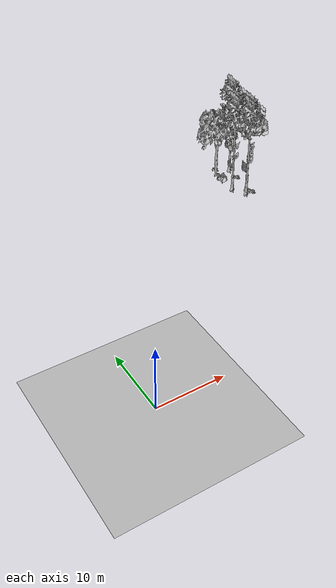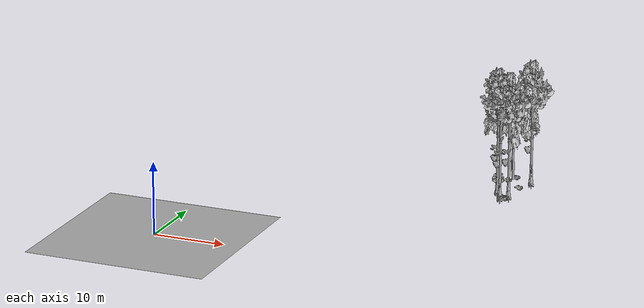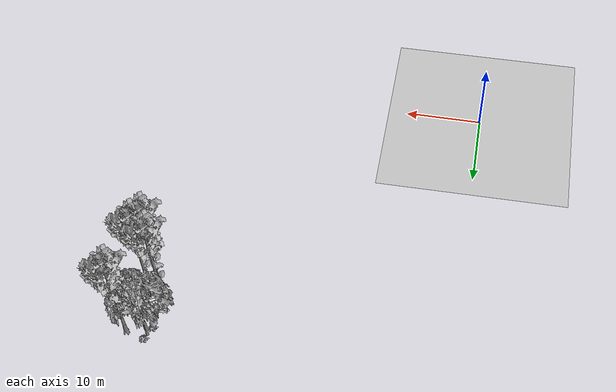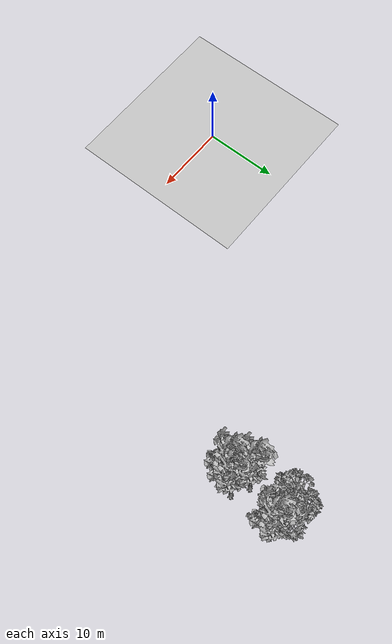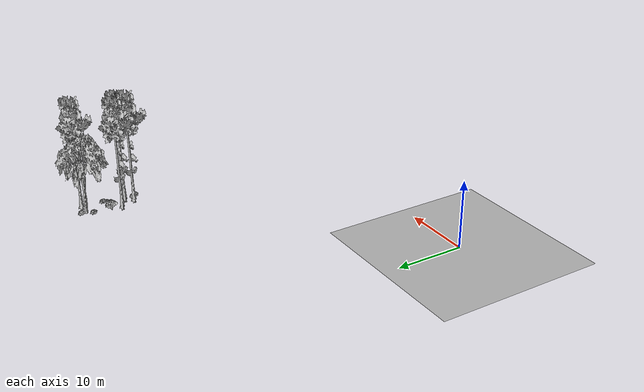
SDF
<sdf version="1.7">
 <world name="default">
  <model name="ground_plane">
   <static>1</static>
   <link name="link">
    <collision name="collision">
     <pose>-50 0 0 0 -0 0</pose>
     <geometry><plane><normal>0 0 1</normal><size>80 80</size></plane></geometry>
     <surface><contact><ode><min_depth>0.01</min_depth><max_vel>0</max_vel></ode></contact></surface>
    </collision>
    <visual name="grass">
     <cast_shadows>0</cast_shadows>
     <geometry>
      <mesh>
       <scale>0.46714285714285714 0.46714285714285714 0.1</scale>
       <uri>file://grass_plane/meshes/grass_plane.dae</uri>
      </mesh>
     </geometry>
    </visual>
   </link>
  </model>
  <model name="Tree 122">
   <static>1</static>
   <pose>38.541167763056265 39.123364891132084 0 1.57079 -0 0</pose>
   <link name="link">
    <collision name="collision">
     <geometry><mesh><scale>3.5 5 3.5</scale><uri>model://tree_9/meshes/tree_9.obj</uri></mesh></geometry>
    </collision>
    <visual name="visual">
     <geometry><mesh><scale>3.5 5 3.5</scale><uri>model://tree_9/meshes/tree_9.obj</uri></mesh></geometry>
    </visual>
   </link>
  </model>
  <model name="Tree 229">
   <static>1</static>
   <pose>35.48953371965894 34.01088379897912 0 1.57079 -0 0</pose>
   <link name="link">
    <collision name="collision">
     <geometry><mesh><scale>3.5 5 3.5</scale><uri>model://tree_9/meshes/tree_9.obj</uri></mesh></geometry>
    </collision>
    <visual name="visual">
     <geometry><mesh><scale>3.5 5 3.5</scale><uri>model://tree_9/meshes/tree_9.obj</uri></mesh></geometry>
    </visual>
   </link>
  </model>
  <model name="Tree 387">
   <static>1</static>
   <pose>36.674760177473686 31.706012299433397 0 1.57079 -0 0</pose>
   <link name="link">
    <collision name="collision">
     <geometry><mesh><scale>3.5 5 3.5</scale><uri>model://tree_9/meshes/tree_9.obj</uri></mesh></geometry>
    </collision>
    <visual name="visual">
     <geometry><mesh><scale>3.5 5 3.5</scale><uri>model://tree_9/meshes/tree_9.obj</uri></mesh></geometry>
    </visual>
   </link>
  </model>
  <model name="Tree 468">
   <static>1</static>
   <pose>35.74546307909968 39.30894549496571 0 1.57079 -0 0</pose>
   <link name="link">
    <collision name="collision">
     <geometry><mesh><scale>3.5 5 3.5</scale><uri>model://tree_2/meshes/tree_2.obj</uri></mesh></geometry>
    </collision>
    <visual name="visual">
     <geometry><mesh><scale>3.5 5 3.5</scale><uri>model://tree_2/meshes/tree_2.obj</uri></mesh></geometry>
    </visual>
   </link>
  </model>
  <model name="Tree 629">
   <static>1</static>
   <pose>37.543495155646156 32.80340105167946 0 1.57079 -0 0</pose>
   <link name="link">
    <collision name="collision">
     <geometry><mesh><scale>3.5 5 3.5</scale><uri>model://tree_9/meshes/tree_9.obj</uri></mesh></geometry>
    </collision>
    <visual name="visual">
     <geometry><mesh><scale>3.5 5 3.5</scale><uri>model://tree_9/meshes/tree_9.obj</uri></mesh></geometry>
    </visual>
   </link>
  </model>
  <model name="Bush 112">
   <static>1</static>
   <pose>35.43891186207571 38.33185056647872 0 1.57079 -0 0</pose>
   <link name="link">
    <collision name="collision">
     <geometry><mesh><scale>2 2 2</scale><uri>model://bush_2/meshes/bush_2.obj</uri></mesh></geometry>
     <surface><contact><collide_without_contact>false</collide_without_contact></contact></surface>
    </collision>
    <visual name="visual">
     <geometry><mesh><scale>2 2 2</scale><uri>model://bush_2/meshes/bush_2.obj</uri></mesh></geometry>
    </visual>
   </link>
  </model>
  <model name="Bush 314">
   <static>1</static>
   <pose>37.121661655096105 31.628814139819383 0 1.57079 -0 0</pose>
   <link name="link">
    <collision name="collision">
     <geometry><mesh><scale>2 2 2</scale><uri>model://bush_2/meshes/bush_2.obj</uri></mesh></geometry>
     <surface><contact><collide_without_contact>false</collide_without_contact></contact></surface>
    </collision>
    <visual name="visual">
     <geometry><mesh><scale>2 2 2</scale><uri>model://bush_2/meshes/bush_2.obj</uri></mesh></geometry>
    </visual>
   </link>
  </model>
  <model name="Bush 320">
   <static>1</static>
   <pose>34.82310716653268 35.81484007831472 0 1.57079 -0 0</pose>
   <link name="link">
    <collision name="collision">
     <geometry><mesh><scale>2 2 2</scale><uri>model://bush_1/meshes/bush_1.obj</uri></mesh></geometry>
     <surface><contact><collide_without_contact>false</collide_without_contact></contact></surface>
    </collision>
    <visual name="visual">
     <geometry><mesh><scale>2 2 2</scale><uri>model://bush_1/meshes/bush_1.obj</uri></mesh></geometry>
    </visual>
   </link>
  </model>
  <model name="Bush 389">
   <static>1</static>
   <pose>36.1020605356627 39.947040502839414 0 1.57079 -0 0</pose>
   <link name="link">
    <collision name="collision">
     <geometry><mesh><scale>2 2 2</scale><uri>model://bush_2/meshes/bush_2.obj</uri></mesh></geometry>
     <surface><contact><collide_without_contact>false</collide_without_contact></contact></surface>
    </collision>
    <visual name="visual">
     <geometry><mesh><scale>2 2 2</scale><uri>model://bush_2/meshes/bush_2.obj</uri></mesh></geometry>
    </visual>
   </link>
  </model>
  <model name="Bush 510">
   <static>1</static>
   <pose>37.885068351787396 36.02794177055222 0 1.57079 -0 0</pose>
   <link name="link">
    <collision name="collision">
     <geometry><mesh><scale>2 2 2</scale><uri>model://bush_2/meshes/bush_2.obj</uri></mesh></geometry>
     <surface><contact><collide_without_contact>false</collide_without_contact></contact></surface>
    </collision>
    <visual name="visual">
     <geometry><mesh><scale>2 2 2</scale><uri>model://bush_2/meshes/bush_2.obj</uri></mesh></geometry>
    </visual>
   </link>
  </model>
  <model name="Bush 526">
   <static>1</static>
   <pose>37.50913823451857 31.133776066959626 0 1.57079 -0 0</pose>
   <link name="link">
    <collision name="collision">
     <geometry><mesh><scale>2 2 2</scale><uri>model://bush_2/meshes/bush_2.obj</uri></mesh></geometry>
     <surface><contact><collide_without_contact>false</collide_without_contact></contact></surface>
    </collision>
    <visual name="visual">
     <geometry><mesh><scale>2 2 2</scale><uri>model://bush_2/meshes/bush_2.obj</uri></mesh></geometry>
    </visual>
   </link>
  </model>
 </world>
</sdf>
